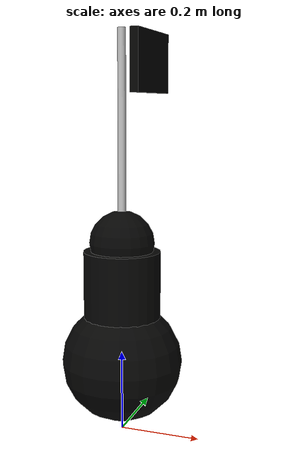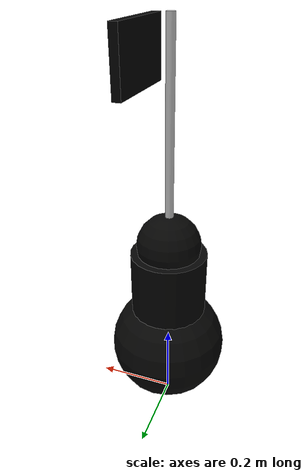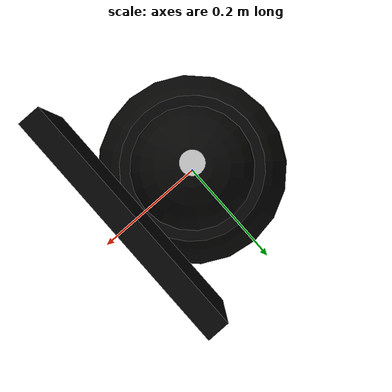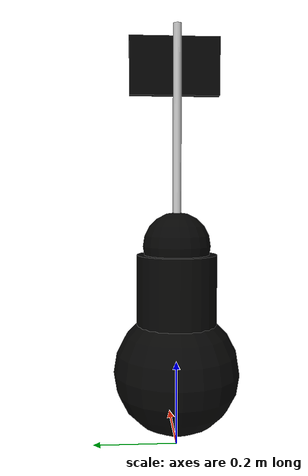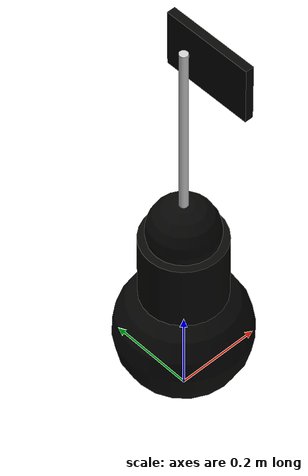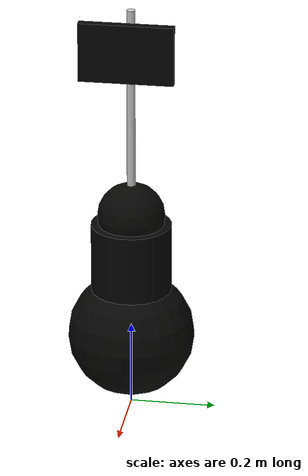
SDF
<?xml version="1.0"?>
<sdf version="1.9">
  <model name="tecnofest_buoy_target_black">
    <static>true</static>
    <link name="body">
      <pose>0 0 0 0 0 0</pose>
      <visual name="lower_teardrop">
        <pose>0 0 0.18 0 0 0</pose>
        <geometry><sphere><radius>0.15</radius></sphere></geometry>
        <material><ambient>0.01 0.01 0.01 1</ambient><diffuse>0.02 0.02 0.018 1</diffuse><specular>0.10 0.10 0.10 1</specular></material>
      </visual>
      <visual name="upper_neck">
        <pose>0 0 0.34 0 0 0</pose>
        <geometry><cylinder><radius>0.095</radius><length>0.24</length></cylinder></geometry>
        <material><ambient>0.01 0.01 0.01 1</ambient><diffuse>0.02 0.02 0.018 1</diffuse><specular>0.10 0.10 0.10 1</specular></material>
      </visual>
      <visual name="top_cap">
        <pose>0 0 0.48 0 0 0</pose>
        <geometry><sphere><radius>0.08</radius></sphere></geometry>
        <material><ambient>0.01 0.01 0.01 1</ambient><diffuse>0.02 0.02 0.018 1</diffuse><specular>0.10 0.10 0.10 1</specular></material>
      </visual>
      <visual name="flag_pole">
        <pose>0 0 0.75 0 0 0</pose>
        <geometry><cylinder><radius>0.01</radius><length>0.48</length></cylinder></geometry>
        <material><ambient>0.8 0.8 0.8 1</ambient><diffuse>0.8 0.8 0.8 1</diffuse></material>
      </visual>
      <visual name="flag">
        <pose>0.07 0 0.91 0 0 0</pose>
        <geometry><box><size>0.02 0.22 0.14</size></box></geometry>
        <material><ambient>0.01 0.01 0.01 1</ambient><diffuse>0.02 0.02 0.018 1</diffuse></material>
      </visual>
      <collision name="body_collision">
        <pose>0 0 0.25 0 0 0</pose>
        <geometry><cylinder><radius>0.15</radius><length>0.50</length></cylinder></geometry>
      </collision>
      <collision name="lidar_target_collision">
        <pose>0 0 0.78 0 0 0</pose>
        <geometry><cylinder><radius>0.12</radius><length>1.20</length></cylinder></geometry>
      </collision>
    </link>
  </model>
</sdf>
